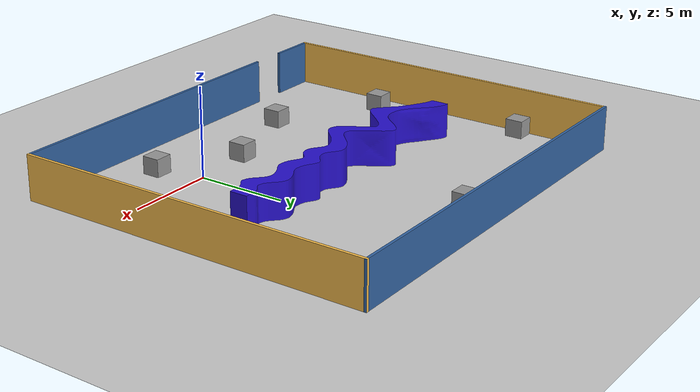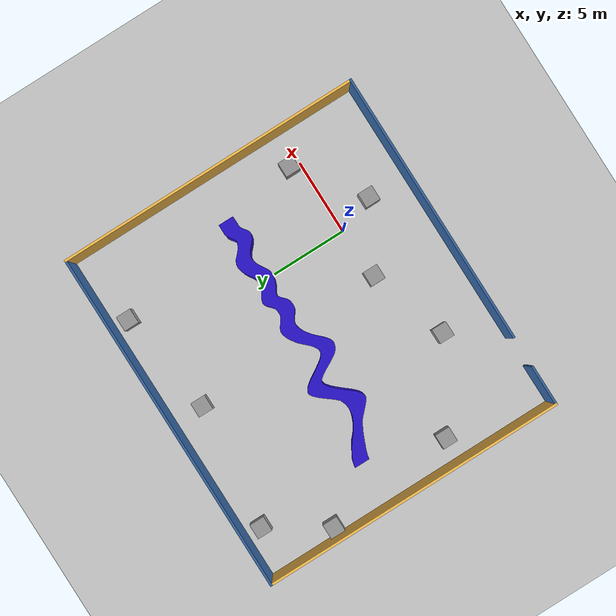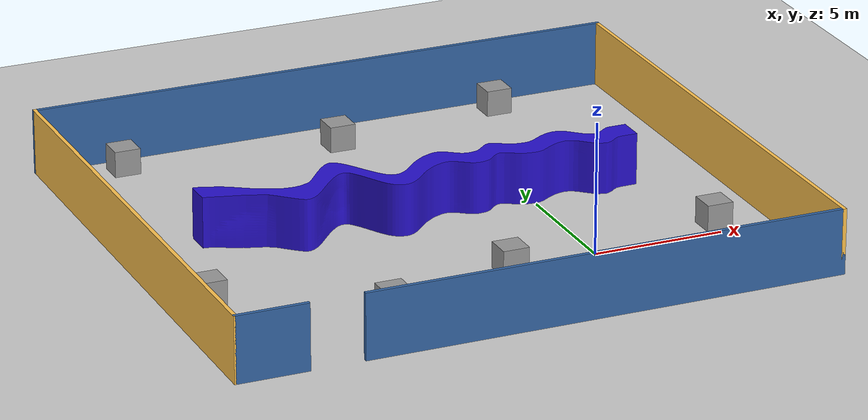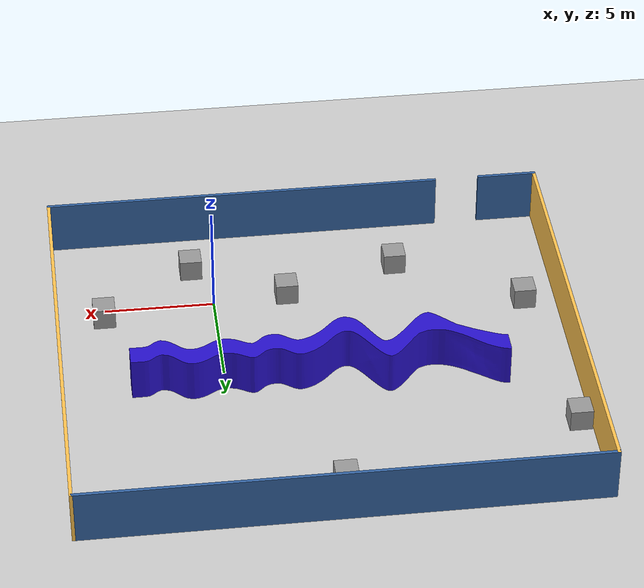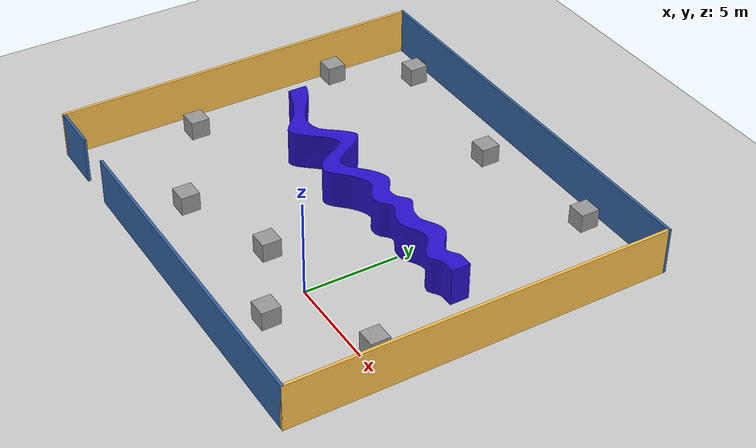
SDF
<sdf version="1.6">
 <world name="default">
  <model name="ground_plane">
   <static>1</static>
   <link name="link">
    <collision name="collision">
     <geometry><plane><normal>0 0 1</normal><size>100 100</size></plane></geometry>
     <surface>
      <contact><collide_bitmask>65535</collide_bitmask></contact>
      <friction><ode><mu>100</mu><mu2>50</mu2></ode></friction>
     </surface>
    </collision>
    <visual name="visual">
     <cast_shadows>0</cast_shadows>
     <geometry><plane><normal>0 0 1</normal><size>100 100</size></plane></geometry>
     <material>
      <script><uri>file://media/materials/scripts/gazebo.material</uri><name>Gazebo/Grey</name></script>
     </material>
    </visual>
   </link>
  </model>
  <model name="blender_wall">
   <static>true</static>
   <link name="body">
    <collision name="collision">
     <geometry><mesh><uri>model://walls/blender_one_wall.stl</uri></mesh></geometry>
    </collision>
    <visual name="visual">
     <geometry><mesh><uri>model://walls/blender_one_wall.dae</uri><scale>0.5 0.5 1.0</scale></mesh></geometry>
    </visual>
    <inertial>
     <mass>1</mass>
     <inertia><ixx>0.145833</ixx><ixy>0</ixy><ixz>0</ixz><iyy>0.145833</iyy><iyz>0</iyz><izz>0.125</izz></inertia>
    </inertial>
   </link>
  </model>
  <light name="sun" type="directional">
   <pose>0 0 10 0 -0 0</pose>
   <diffuse>0.8 0.8 0.8 1</diffuse>
   <specular>0.2 0.2 0.2 1</specular>
   <attenuation>
    <range>1000</range>
    <constant>0.9</constant>
    <linear>0.01</linear>
    <quadratic>0.001</quadratic>
   </attenuation>
   <direction>-0.5 0.1 -0.9</direction>
  </light>
  <gravity>0 0 -9.8</gravity>
  <magnetic_field>6e-06 2.3e-05 -4.2e-05</magnetic_field>
  <atmosphere type="adiabatic"/>
  <physics name="default_physics" default="0" type="ode">
   <max_step_size>0.001</max_step_size>
   <real_time_factor>1</real_time_factor>
   <real_time_update_rate>1000</real_time_update_rate>
  </physics>
  <scene><ambient>0.4 0.4 0.4 1</ambient><background>0.7 0.7 0.7 1</background><shadows>1</shadows></scene>
  <audio><device>default</device></audio>
  <spherical_coordinates>
   <surface_model>EARTH_WGS84</surface_model>
   <latitude_deg>0</latitude_deg>
   <longitude_deg>0</longitude_deg>
   <elevation>0</elevation>
   <heading_deg>0</heading_deg>
  </spherical_coordinates>
  <model name="curved_wall.sdf">
   <pose>-4.2305 5.01515 0 0 -0 0</pose>
   <link name="Wall_3">
    <collision name="Wall_3_Collision">
     <geometry><box><size>18.25 0.15 2.5</size></box></geometry>
     <pose>0 0 1.25 0 -0 0</pose>
    </collision>
    <visual name="Wall_3_Visual">
     <pose>0 0 1.25 0 -0 0</pose>
     <geometry><box><size>18.25 0.15 2.5</size></box></geometry>
     <material>
      <script><uri>file://media/materials/scripts/gazebo.material</uri><name>Gazebo/Grey</name></script>
      <ambient>0.203922 0.396078 0.643137 1</ambient>
     </material>
     <meta><layer>0</layer></meta>
    </visual>
    <pose>2.375 -10.05 0 0 -0 0</pose>
   </link>
   <link name="Wall_4">
    <collision name="Wall_4_Collision">
     <geometry><box><size>20.25 0.15 2.5</size></box></geometry>
     <pose>0 0 1.25 0 -0 0</pose>
    </collision>
    <visual name="Wall_4_Visual">
     <pose>0 0 1.25 0 -0 0</pose>
     <geometry><box><size>20.25 0.15 2.5</size></box></geometry>
     <material>
      <script><uri>file://media/materials/scripts/gazebo.material</uri><name>Gazebo/Grey</name></script>
      <ambient>1 0.764706 0.305882 1</ambient>
     </material>
     <meta><layer>0</layer></meta>
    </visual>
    <pose>11.425 0 0 0 -0 1.5708</pose>
   </link>
   <link name="Wall_5">
    <collision name="Wall_5_Collision">
     <geometry><box><size>23 0.15 2.5</size></box></geometry>
     <pose>0 0 1.25 0 -0 0</pose>
    </collision>
    <visual name="Wall_5_Visual">
     <pose>0 0 1.25 0 -0 0</pose>
     <geometry><box><size>23 0.15 2.5</size></box></geometry>
     <material>
      <script><uri>file://media/materials/scripts/gazebo.material</uri><name>Gazebo/Grey</name></script>
      <ambient>0.203922 0.396078 0.643137 1</ambient>
     </material>
     <meta><layer>0</layer></meta>
    </visual>
    <pose>0 10.05 0 0 -0 3.14159</pose>
   </link>
   <link name="Wall_6">
    <collision name="Wall_6_Collision">
     <geometry><box><size>20.25 0.15 2.5</size></box></geometry>
     <pose>0 0 1.25 0 -0 0</pose>
    </collision>
    <visual name="Wall_6_Visual">
     <pose>0 0 1.25 0 -0 0</pose>
     <geometry><box><size>20.25 0.15 2.5</size></box></geometry>
     <material>
      <script><uri>file://media/materials/scripts/gazebo.material</uri><name>Gazebo/Grey</name></script>
      <ambient>1 0.764706 0.305882 1</ambient>
     </material>
     <meta><layer>0</layer></meta>
    </visual>
    <pose>-11.425 0 0 0 -0 -1.5708</pose>
   </link>
   <link name="Wall_7">
    <collision name="Wall_7_Collision">
     <geometry><box><size>2.75 0.15 2.5</size></box></geometry>
     <pose>0 0 1.25 0 -0 0</pose>
    </collision>
    <visual name="Wall_7_Visual">
     <pose>0 0 1.25 0 -0 0</pose>
     <geometry><box><size>2.75 0.15 2.5</size></box></geometry>
     <material>
      <script><uri>file://media/materials/scripts/gazebo.material</uri><name>Gazebo/Grey</name></script>
      <ambient>0.203922 0.396078 0.643137 1</ambient>
     </material>
     <meta><layer>0</layer></meta>
    </visual>
    <pose>-10.125 -10.05 0 0 -0 0</pose>
   </link>
   <static>1</static>
  </model>
  <model name="unit_box">
   <pose>-12.654 13.9703 0.499995 -1e-05 -0 -0</pose>
   <link name="link">
    <inertial>
     <mass>1</mass>
     <inertia>
      <ixx>0.166667</ixx>
      <ixy>0</ixy>
      <ixz>0</ixz>
      <iyy>0.166667</iyy>
      <iyz>0</iyz>
      <izz>0.166667</izz>
     </inertia>
    </inertial>
    <collision name="collision"><geometry><box><size>1 1 1</size></box></geometry></collision>
    <visual name="visual">
     <geometry><box><size>1 1 1</size></box></geometry>
     <material>
      <script><name>Gazebo/Grey</name><uri>file://media/materials/scripts/gazebo.material</uri></script>
     </material>
    </visual>
   </link>
  </model>
  <model name="unit_box_0">
   <pose>-4.45981 13.0419 0.499995 0 1e-05 0</pose>
   <link name="link">
    <inertial>
     <mass>1</mass>
     <inertia>
      <ixx>0.166667</ixx>
      <ixy>0</ixy>
      <ixz>0</ixz>
      <iyy>0.166667</iyy>
      <iyz>0</iyz>
      <izz>0.166667</izz>
     </inertia>
    </inertial>
    <collision name="collision"><geometry><box><size>1 1 1</size></box></geometry></collision>
    <visual name="visual">
     <geometry><box><size>1 1 1</size></box></geometry>
     <material>
      <script><name>Gazebo/Grey</name><uri>file://media/materials/scripts/gazebo.material</uri></script>
     </material>
    </visual>
   </link>
  </model>
  <model name="unit_box_1">
   <pose>2.40923 14.0562 0.499995 -1e-05 -0 -0</pose>
   <link name="link">
    <inertial>
     <mass>1</mass>
     <inertia>
      <ixx>0.166667</ixx>
      <ixy>0</ixy>
      <ixz>0</ixz>
      <iyy>0.166667</iyy>
      <iyz>0</iyz>
      <izz>0.166667</izz>
     </inertia>
    </inertial>
    <collision name="collision"><geometry><box><size>1 1 1</size></box></geometry></collision>
    <visual name="visual">
     <geometry><box><size>1 1 1</size></box></geometry>
     <material>
      <script><name>Gazebo/Grey</name><uri>file://media/materials/scripts/gazebo.material</uri></script>
     </material>
    </visual>
   </link>
  </model>
  <model name="unit_box_2">
   <pose>5.05826 0.701087 0.499995 0 1e-05 0</pose>
   <link name="link">
    <inertial>
     <mass>1</mass>
     <inertia>
      <ixx>0.166667</ixx>
      <ixy>0</ixy>
      <ixz>0</ixz>
      <iyy>0.166667</iyy>
      <iyz>0</iyz>
      <izz>0.166667</izz>
     </inertia>
    </inertial>
    <collision name="collision"><geometry><box><size>1 1 1</size></box></geometry></collision>
    <visual name="visual">
     <geometry><box><size>1 1 1</size></box></geometry>
     <material>
      <script><name>Gazebo/Grey</name><uri>file://media/materials/scripts/gazebo.material</uri></script>
     </material>
    </visual>
   </link>
  </model>
  <model name="unit_box_3">
   <pose>0.871329 -2.41769 0.499995 -1e-05 -0 -0</pose>
   <link name="link">
    <inertial>
     <mass>1</mass>
     <inertia>
      <ixx>0.166667</ixx>
      <ixy>0</ixy>
      <ixz>0</ixz>
      <iyy>0.166667</iyy>
      <iyz>0</iyz>
      <izz>0.166667</izz>
     </inertia>
    </inertial>
    <collision name="collision"><geometry><box><size>1 1 1</size></box></geometry></collision>
    <visual name="visual">
     <geometry><box><size>1 1 1</size></box></geometry>
     <material>
      <script><name>Gazebo/Grey</name><uri>file://media/materials/scripts/gazebo.material</uri></script>
     </material>
    </visual>
   </link>
  </model>
  <model name="unit_box_4">
   <pose>-3.34872 -0.107263 0.499995 0 1e-05 0</pose>
   <link name="link">
    <inertial>
     <mass>1</mass>
     <inertia>
      <ixx>0.166667</ixx>
      <ixy>0</ixy>
      <ixz>0</ixz>
      <iyy>0.166667</iyy>
      <iyz>0</iyz>
      <izz>0.166667</izz>
     </inertia>
    </inertial>
    <collision name="collision"><geometry><box><size>1 1 1</size></box></geometry></collision>
    <visual name="visual">
     <geometry><box><size>1 1 1</size></box></geometry>
     <material>
      <script><name>Gazebo/Grey</name><uri>file://media/materials/scripts/gazebo.material</uri></script>
     </material>
    </visual>
   </link>
  </model>
  <model name="unit_box_5">
   <pose>-8.54373 -1.78861 0.499995 -1e-05 -0 -0</pose>
   <link name="link">
    <inertial>
     <mass>1</mass>
     <inertia>
      <ixx>0.166667</ixx>
      <ixy>0</ixy>
      <ixz>0</ixz>
      <iyy>0.166667</iyy>
      <iyz>0</iyz>
      <izz>0.166667</izz>
     </inertia>
    </inertial>
    <collision name="collision"><geometry><box><size>1 1 1</size></box></geometry></collision>
    <visual name="visual">
     <geometry><box><size>1 1 1</size></box></geometry>
     <material>
      <script><name>Gazebo/Grey</name><uri>file://media/materials/scripts/gazebo.material</uri></script>
     </material>
    </visual>
   </link>
  </model>
  <model name="unit_box_6">
   <pose>-14.0924 1.4892 0.499995 0 1e-05 0</pose>
   <link name="link">
    <inertial>
     <mass>1</mass>
     <inertia>
      <ixx>0.166667</ixx>
      <ixy>0</ixy>
      <ixz>0</ixz>
      <iyy>0.166667</iyy>
      <iyz>0</iyz>
      <izz>0.166667</izz>
     </inertia>
    </inertial>
    <collision name="collision"><geometry><box><size>1 1 1</size></box></geometry></collision>
    <visual name="visual">
     <geometry><box><size>1 1 1</size></box></geometry>
     <material>
      <script><name>Gazebo/Grey</name><uri>file://media/materials/scripts/gazebo.material</uri></script>
     </material>
    </visual>
   </link>
  </model>
  <model name="unit_box_7">
   <pose>-15.0409 10.2056 0.5 0 -0 0</pose>
   <link name="link">
    <inertial>
     <mass>1</mass>
     <inertia>
      <ixx>0.166667</ixx>
      <ixy>0</ixy>
      <ixz>0</ixz>
      <iyy>0.166667</iyy>
      <iyz>0</iyz>
      <izz>0.166667</izz>
     </inertia>
    </inertial>
    <collision name="collision"><geometry><box><size>1 1 1</size></box></geometry></collision>
    <visual name="visual">
     <geometry><box><size>1 1 1</size></box></geometry>
     <material>
      <script><name>Gazebo/Grey</name><uri>file://media/materials/scripts/gazebo.material</uri></script>
     </material>
    </visual>
   </link>
  </model>
 </world>
</sdf>
